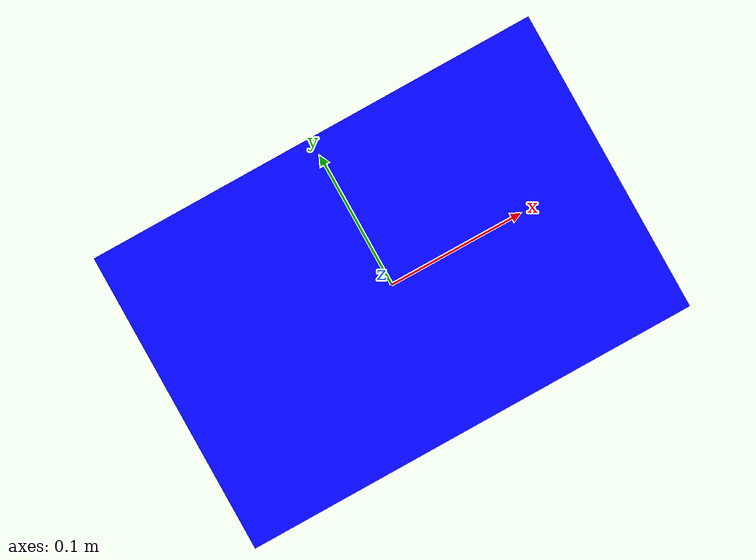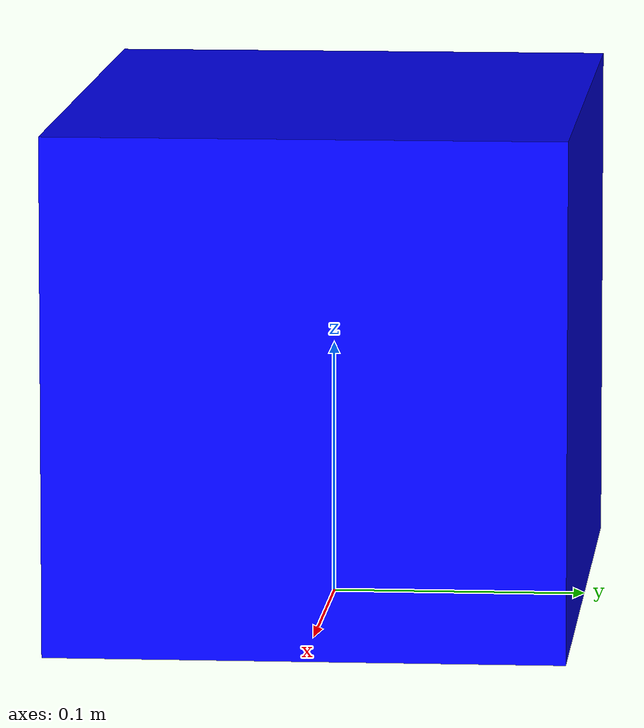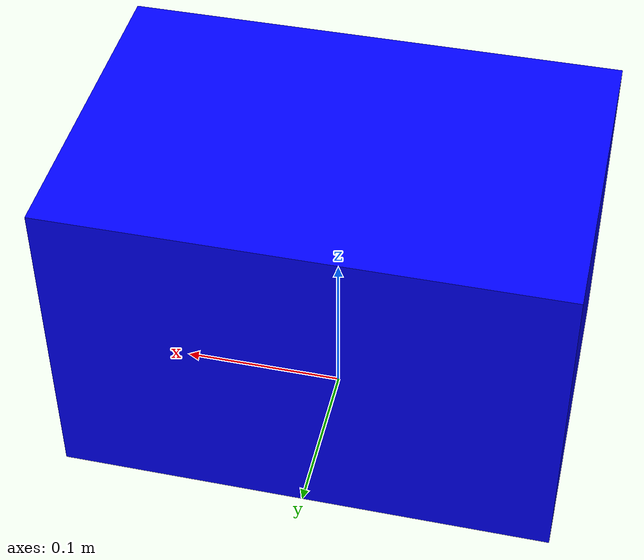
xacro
<?xml version="1.0"?>
<robot xmlns:xacro="http://ros.org/wiki/xacro" name="simple_rectangle">

  <!-- Rectangle dimensions -->
  <xacro:property name="length" value="0.3"/>  <!-- x-axis -->
  <xacro:property name="width" value="0.2"/>   <!-- y-axis -->
  <xacro:property name="height" value="0.2"/>  <!-- z-axis -->
  <xacro:property name="box_mass" value="1.0"/>

  <!-- Rectangle macro -->
  <xacro:macro name="rectangle_box" params="prefix x y z">
    <link name="${prefix}base_link">
      <visual>
        <origin xyz="0 0 ${height / 2}" rpy="0 0 0"/>
        <geometry>
          <box size="${length} ${width} ${height}"/>
        </geometry>
        <material name="blue">
          <color rgba="0 0 1 1"/>
        </material>
      </visual>

      <collision>
        <origin xyz="0 0 ${height / 2}" rpy="0 0 0"/>
        <geometry>
          <box size="${length} ${width} ${height}"/>
        </geometry>
      </collision>

      <inertial>
        <origin xyz="0 0 ${height / 2}" rpy="0 0 0"/>
        <mass value="${box_mass}"/>
        <inertia ixx="0.01" ixy="0.0" ixz="0.0"
                 iyy="0.01" iyz="0.0"
                 izz="0.01"/>
      </inertial>
    </link>
  </xacro:macro>

  <!-- Macro instantiation -->
  <xacro:rectangle_box prefix="rect_" x="0.0" y="0.0" z="0.0"/>

</robot>
